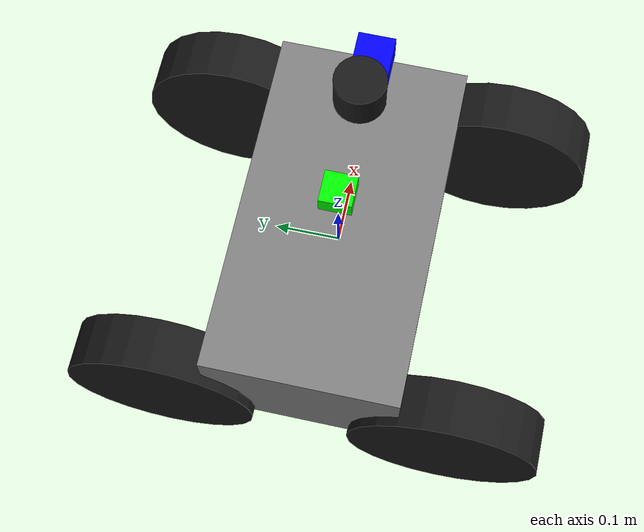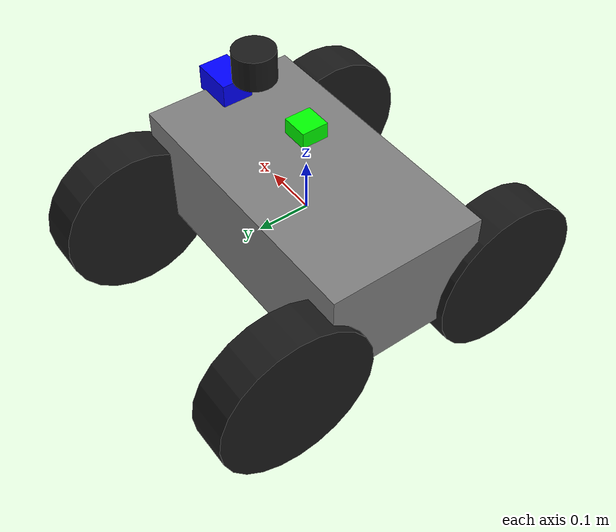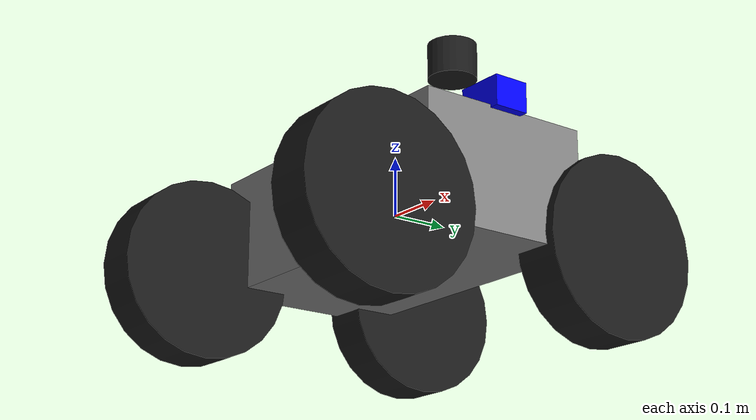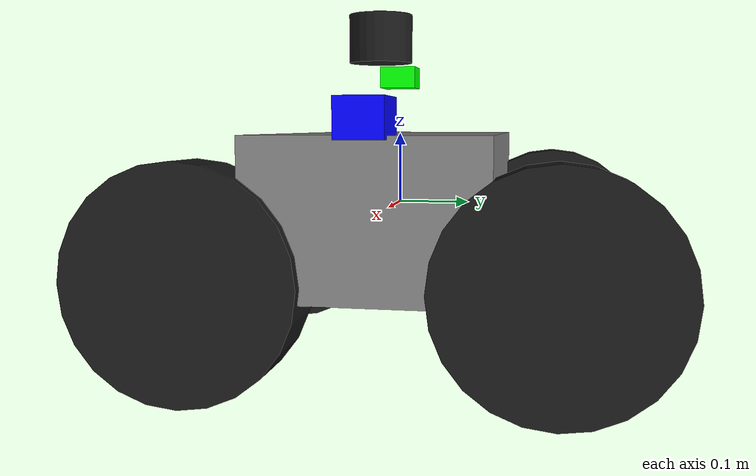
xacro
<?xml version="1.0"?>
<robot xmlns:xacro="http://www.ros.org/wiki/xacro" name="course_ackermann">

  <!-- Параметризация размеров (метры, REP-103) -->
  <xacro:property name="wheel_radius" value="0.15"/>
  <xacro:property name="wheel_width" value="0.08"/>
  <xacro:property name="track_width" value="0.45"/>
  <xacro:property name="wheelbase" value="0.60"/>
  <xacro:property name="chassis_length" value="0.55"/>
  <xacro:property name="chassis_width" value="0.30"/>
  <xacro:property name="chassis_height" value="0.20"/>

  <!-- Материалы -->
  <material name="gray">
    <color rgba="0.5 0.5 0.5 1.0"/>
  </material>
  <material name="black">
    <color rgba="0.1 0.1 0.1 1.0"/>
  </material>
  <material name="blue">
    <color rgba="0.0 0.0 1.0 1.0"/>
  </material>
  <material name="green">
    <color rgba="0.0 1.0 0.0 1.0"/>
  </material>

  <!-- base_link -->
  <link name="base_link">
    <visual>
      <geometry><box size="${chassis_length} ${chassis_width} ${chassis_height}"/></geometry>
      <material name="gray"/>
    </visual>
    <collision>
      <geometry><box size="${chassis_length} ${chassis_width} ${chassis_height}"/></geometry>
    </collision>
    <inertial>
      <mass value="15.0"/>
      <inertia ixx="0.5" ixy="0.0" ixz="0.0" iyy="0.4" iyz="0.0" izz="0.6"/>
    </inertial>
  </link>

  <!-- Камера -->
  <link name="camera_link">
    <visual>
      <geometry><box size="0.08 0.06 0.05"/></geometry>
      <material name="blue"/>
    </visual>
    <collision>
      <geometry><box size="0.08 0.06 0.05"/></geometry>
    </collision>
    <inertial>
      <mass value="0.2"/>
      <inertia ixx="0.0002" ixy="0.0" ixz="0.0" iyy="0.0002" iyz="0.0" izz="0.0001"/>
    </inertial>
  </link>

  <joint name="camera_joint" type="fixed">
    <parent link="base_link"/>
    <child link="camera_link"/>
    <origin xyz="0.25 0.0 0.12" rpy="0 0 0"/>
  </joint>

  <!-- Лидар -->
  <link name="lidar_link">
    <visual>
      <geometry><cylinder radius="0.04" length="0.06"/></geometry>
      <material name="black"/>
    </visual>
    <collision>
      <geometry><cylinder radius="0.04" length="0.06"/></geometry>
    </collision>
    <inertial>
      <mass value="0.3"/>
      <inertia ixx="0.0002" ixy="0.0" ixz="0.0" iyy="0.0002" iyz="0.0" izz="0.0003"/>
    </inertial>
  </link>

  <joint name="lidar_joint" type="fixed">
    <parent link="base_link"/>
    <child link="lidar_link"/>
    <origin xyz="0.15 0.0 0.22" rpy="0 0 0"/>
  </joint>

  <!-- IMU -->
  <link name="imu_link">
    <visual>
      <geometry><box size="0.05 0.05 0.03"/></geometry>
      <material name="green"/>
    </visual>
    <collision>
      <geometry><box size="0.05 0.05 0.03"/></geometry>
    </collision>
    <inertial>
      <mass value="0.1"/>
      <inertia ixx="0.0001" ixy="0.0" ixz="0.0" iyy="0.0001" iyz="0.0" izz="0.0001"/>
    </inertial>
  </link>

  <joint name="imu_joint" type="fixed">
    <parent link="base_link"/>
    <child link="imu_link"/>
    <origin xyz="0.0 0.0 0.18" rpy="0 0 0"/>
  </joint>

  <!-- Колёса (continuous, не обязательны для зачёта) -->
  <xacro:macro name="wheel" params="side pos_x pos_y">
    <link name="wheel_${side}_link">
      <visual>
        <geometry><cylinder radius="${wheel_radius}" length="${wheel_width}"/></geometry>
        <material name="black"/>
      </visual>
      <collision>
        <geometry><cylinder radius="${wheel_radius}" length="${wheel_width}"/></geometry>
      </collision>
      <inertial>
        <mass value="2.0"/>
        <inertia ixx="0.02" ixy="0.0" ixz="0.0" iyy="0.02" iyz="0.0" izz="0.01"/>
      </inertial>
    </link>

    <joint name="wheel_${side}_joint" type="continuous">
      <parent link="base_link"/>
      <child link="wheel_${side}_link"/>
      <origin xyz="${pos_x} ${pos_y} -0.08" rpy="0 1.5708 0"/>
      <axis xyz="0 1 0"/>
    </joint>
  </xacro:macro>

  <xacro:wheel side="left_front"  pos_x="0.25"  pos_y="0.225"/>
  <xacro:wheel side="right_front" pos_x="0.25"  pos_y="-0.225"/>
  <xacro:wheel side="left_rear"   pos_x="-0.25" pos_y="0.225"/>
  <xacro:wheel side="right_rear"  pos_x="-0.25" pos_y="-0.225"/>

</robot>
